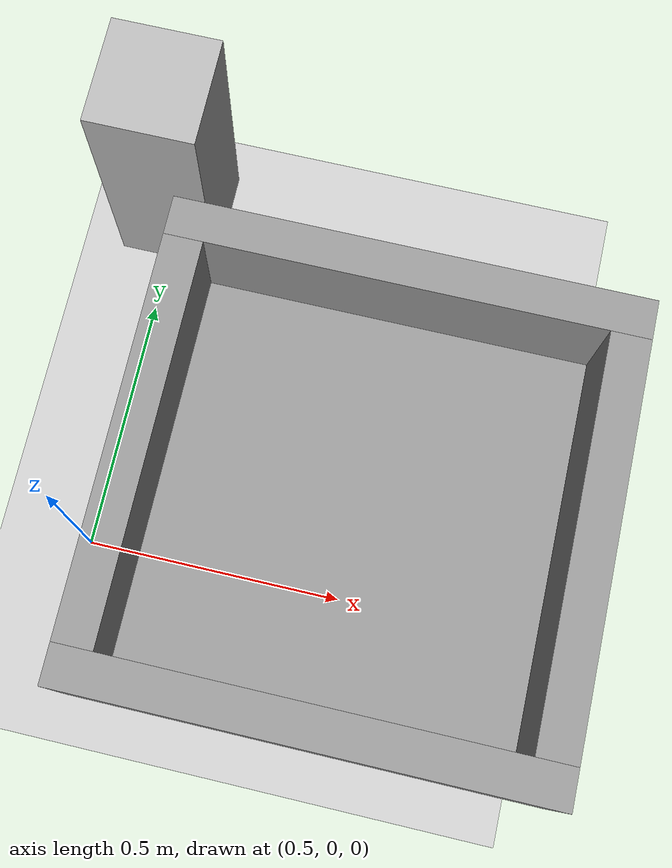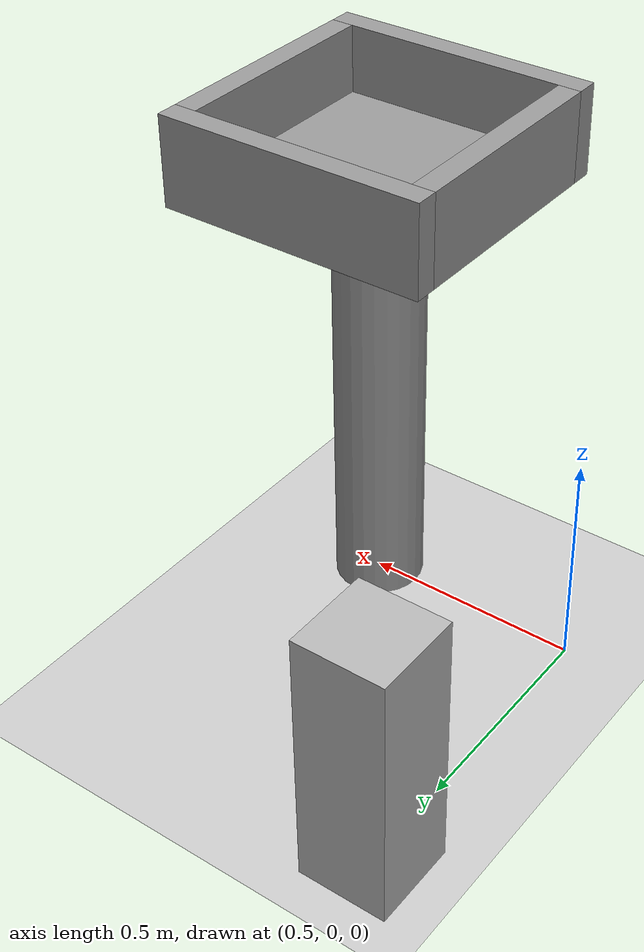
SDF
<sdf version="1.3">
 <world name="default">
  <scene><ambient>0.3 0.3 0.3 1.0</ambient></scene>
  <light type="directional" name="sun">
   <pose>0 0 100 0 0 0</pose>
   <diffuse>0.9 0.9 0.9 1</diffuse>
   <specular>0.1 0.1 0.1 1</specular>
   <attenuation>
    <range>1000</range>
    <constant>0.9</constant>
    <linear>0.01</linear>
    <quadratic>0.001</quadratic>
   </attenuation>
   <direction>-0.2 0.0 -1.0</direction>
  </light>
  <light type="point" name="light_bulb">
   <cast_shadows>false</cast_shadows>
   <pose>-3 0 4 0 0 0</pose>
   <diffuse>0.5 0.5 0.5 1</diffuse>
   <specular>0.0 0.0 0.0 1</specular>
   <attenuation>
    <range>80</range>
    <constant>0.9</constant>
    <linear>0.01</linear>
    <quadratic>0.001</quadratic>
   </attenuation>
  </light>
  <include><uri>model://ground_plane</uri></include>
  <model name="seat">
   <static>true</static>
   <pose>0.5 0.72 0.3 0 0 0</pose>
   <link name="link">
    <collision name="collision"><geometry><box><size>0.45 0.5 0.6</size></box></geometry></collision>
    <visual name="visual"><geometry><box><size>0.2 0.2 0.6</size></box></geometry></visual>
   </link>
  </model>
  <model name="bin">
   <static>true</static>
   <pose>1.0 0.0 1.00 0 0 0</pose>
   <link name="link">
    <collision name="pedistal_collision">
     <pose>0 0 -0.5 0 0 0</pose>
     <geometry><cylinder><radius>0.1</radius><length>1.0</length></cylinder></geometry>
    </collision>
    <visual name="pedistal_visual">
     <pose>0 0 -0.5 0 0 0</pose>
     <geometry><cylinder><radius>0.1</radius><length>1.0</length></cylinder></geometry>
     <material>
      <script><uri>file://media/materials/scripts/gazebo.material</uri><name>Gazebo/Grey</name></script>
     </material>
    </visual>
    <collision name="bottom_collision"><geometry><box><size>0.5 0.5 0.05</size></box></geometry></collision>
    <visual name="bottom_visual">
     <geometry><box><size>0.5 0.5 0.05</size></box></geometry>
     <material>
      <script><uri>file://media/materials/scripts/gazebo.material</uri><name>Gazebo/Grey</name></script>
     </material>
    </visual>
    <collision name="side1_collision">
     <pose>0 0.275 0.075 0 0 0</pose>
     <geometry><box><size>0.6 0.05 0.2</size></box></geometry>
    </collision>
    <visual name="side1_visual">
     <pose>0 0.275 0.075 0 0 0</pose>
     <geometry><box><size>0.6 0.05 0.2</size></box></geometry>
     <material>
      <script><uri>file://media/materials/scripts/gazebo.material</uri><name>Gazebo/Grey</name></script>
     </material>
    </visual>
    <collision name="side2_collision">
     <pose>0 -0.275 0.075 0 0 0</pose>
     <geometry><box><size>0.6 0.05 0.2</size></box></geometry>
    </collision>
    <visual name="side2_visual">
     <pose>0 -0.275 0.075 0 0 0</pose>
     <geometry><box><size>0.6 0.05 0.2</size></box></geometry>
     <material>
      <script><uri>file://media/materials/scripts/gazebo.material</uri><name>Gazebo/Grey</name></script>
     </material>
    </visual>
    <collision name="side3_collision">
     <pose>0.275 0 0.075 0 0 0</pose>
     <geometry><box><size>0.05 0.5 0.2</size></box></geometry>
    </collision>
    <visual name="side3_visual">
     <pose>0.275 0 0.075 0 0 0</pose>
     <geometry><box><size>0.05 0.5 0.2</size></box></geometry>
     <material>
      <script><uri>file://media/materials/scripts/gazebo.material</uri><name>Gazebo/Grey</name></script>
     </material>
    </visual>
    <collision name="side4_collision">
     <pose>-0.275 0 0.075 0 0 0</pose>
     <geometry><box><size>0.05 0.5 0.2</size></box></geometry>
    </collision>
    <visual name="side4_visual">
     <pose>-0.275 0 0.075 0 0 0</pose>
     <geometry><box><size>0.05 0.5 0.2</size></box></geometry>
     <material>
      <script><uri>file://media/materials/scripts/gazebo.material</uri><name>Gazebo/Grey</name></script>
     </material>
    </visual>
   </link>
  </model>
 </world>
</sdf>
